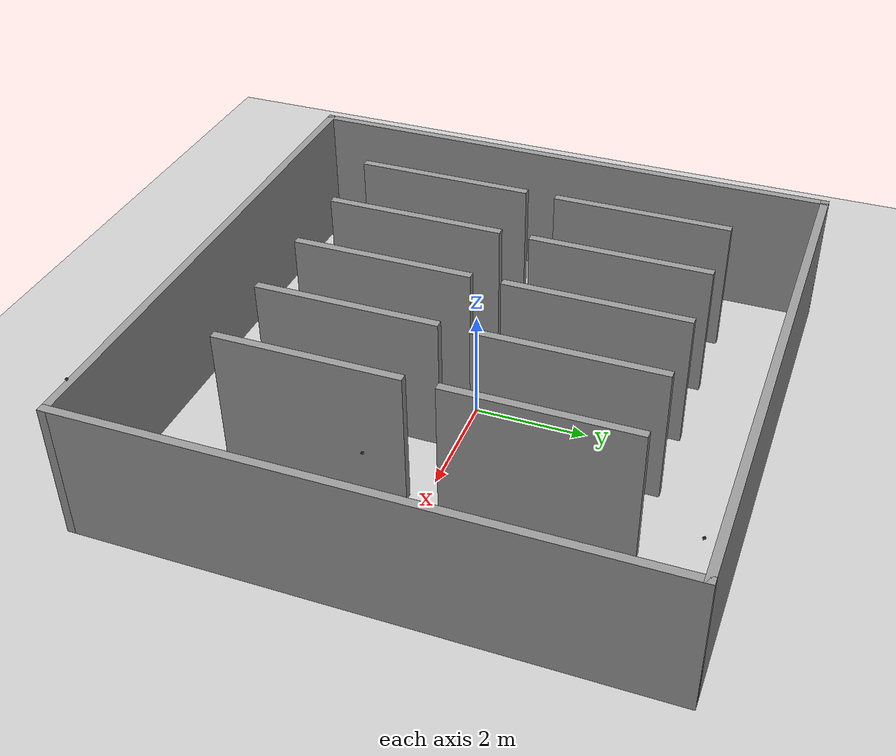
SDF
<sdf version="1.6">
 <world name="default">
  <light name="sun" type="directional">
   <pose>0 0 10 0 -0 0</pose>
   <diffuse>0.8 0.8 0.8 1</diffuse>
   <specular>0.2 0.2 0.2 1</specular>
   <attenuation>
    <range>1000</range>
    <constant>0.9</constant>
    <linear>0.01</linear>
    <quadratic>0.001</quadratic>
   </attenuation>
   <direction>-0.5 0.1 -0.9</direction>
  </light>
  <model name="ground_plane">
   <static>1</static>
   <link name="link">
    <collision name="collision">
     <geometry><plane><normal>0 0 1</normal><size>100 100</size></plane></geometry>
     <surface><friction><ode><mu>100</mu><mu2>50</mu2></ode></friction></surface>
    </collision>
    <visual name="visual">
     <cast_shadows>0</cast_shadows>
     <geometry><plane><normal>0 0 1</normal><size>100 100</size></plane></geometry>
     <material>
      <script><uri>file://media/materials/scripts/gazebo.material</uri><name>Gazebo/Grey</name></script>
     </material>
    </visual>
   </link>
  </model>
  <gravity>0 0 -9.8</gravity>
  <magnetic_field>6e-06 2.3e-05 -4.2e-05</magnetic_field>
  <atmosphere type="adiabatic"/>
  <physics name="default_physics" default="0" type="ode">
   <max_step_size>0.001</max_step_size>
   <real_time_factor>1</real_time_factor>
   <real_time_update_rate>1000</real_time_update_rate>
  </physics>
  <scene><ambient>0.4 0.4 0.4 1</ambient><background>0.7 0.7 0.7 1</background><shadows>1</shadows></scene>
  <spherical_coordinates>
   <surface_model>EARTH_WGS84</surface_model>
   <latitude_deg>0</latitude_deg>
   <longitude_deg>0</longitude_deg>
   <elevation>0</elevation>
   <heading_deg>0</heading_deg>
  </spherical_coordinates>
  <model name="warehouse">
   <link name="Wall_12">
    <pose>-3.5 1.925 0 0 0 -1.5708</pose>
    <visual name="Wall_12_Visual">
     <pose>0 0 1.25 0 -0 0</pose>
     <geometry><box><size>3.3 0.15 2.5</size></box></geometry>
     <material>
      <script><uri>file://media/materials/scripts/gazebo.material</uri><name>Gazebo/Grey</name></script>
      <ambient>1 1 1 1</ambient>
      <shader type="pixel"/>
      <diffuse>0.7 0.7 0.7 1</diffuse>
      <specular>0.01 0.01 0.01 1</specular>
      <emissive>0 0 0 1</emissive>
     </material>
     <meta><layer>0</layer></meta>
    </visual>
    <collision name="Wall_12_Collision">
     <pose>0 0 1.25 0 -0 0</pose>
     <geometry><box><size>3.3 0.15 2.5</size></box></geometry>
     <surface>
      <friction>
       <ode><mu>1</mu><mu2>1</mu2><fdir1>0 0 0</fdir1><slip1>0</slip1><slip2>0</slip2></ode>
       <torsional>
        <coefficient>1</coefficient>
        <patch_radius>0</patch_radius>
        <surface_radius>0</surface_radius>
        <use_patch_radius>1</use_patch_radius>
        <ode><slip>0</slip></ode>
       </torsional>
      </friction>
      <bounce><restitution_coefficient>0</restitution_coefficient><threshold>1e+06</threshold></bounce>
      <contact>
       <collide_without_contact>0</collide_without_contact>
       <collide_without_contact_bitmask>1</collide_without_contact_bitmask>
       <collide_bitmask>1</collide_bitmask>
       <ode>
        <soft_cfm>0</soft_cfm>
        <soft_erp>0.2</soft_erp>
        <kp>1e+13</kp>
        <kd>1</kd>
        <max_vel>0.01</max_vel>
        <min_depth>0</min_depth>
       </ode>
       <bullet>
        <split_impulse>1</split_impulse>
        <split_impulse_penetration_threshold>-0.01</split_impulse_penetration_threshold>
        <soft_cfm>0</soft_cfm>
        <soft_erp>0.2</soft_erp>
        <kp>1e+13</kp>
        <kd>1</kd>
       </bullet>
      </contact>
     </surface>
    </collision>
   </link>
   <link name="Wall_14">
    <pose>-3.5 -1.925 0 0 -0 1.5708</pose>
    <visual name="Wall_14_Visual">
     <pose>0 0 1.25 0 -0 0</pose>
     <geometry><box><size>3.3 0.15 2.5</size></box></geometry>
     <material>
      <script><uri>file://media/materials/scripts/gazebo.material</uri><name>Gazebo/Grey</name></script>
      <ambient>1 1 1 1</ambient>
      <shader type="pixel"/>
      <diffuse>0.7 0.7 0.7 1</diffuse>
      <specular>0.01 0.01 0.01 1</specular>
      <emissive>0 0 0 1</emissive>
     </material>
     <meta><layer>0</layer></meta>
    </visual>
    <collision name="Wall_14_Collision">
     <pose>0 0 1.25 0 -0 0</pose>
     <geometry><box><size>3.3 0.15 2.5</size></box></geometry>
     <surface>
      <friction>
       <ode><mu>1</mu><mu2>1</mu2><fdir1>0 0 0</fdir1><slip1>0</slip1><slip2>0</slip2></ode>
       <torsional>
        <coefficient>1</coefficient>
        <patch_radius>0</patch_radius>
        <surface_radius>0</surface_radius>
        <use_patch_radius>1</use_patch_radius>
        <ode><slip>0</slip></ode>
       </torsional>
      </friction>
      <bounce><restitution_coefficient>0</restitution_coefficient><threshold>1e+06</threshold></bounce>
      <contact>
       <collide_without_contact>0</collide_without_contact>
       <collide_without_contact_bitmask>1</collide_without_contact_bitmask>
       <collide_bitmask>1</collide_bitmask>
       <ode>
        <soft_cfm>0</soft_cfm>
        <soft_erp>0.2</soft_erp>
        <kp>1e+13</kp>
        <kd>1</kd>
        <max_vel>0.01</max_vel>
        <min_depth>0</min_depth>
       </ode>
       <bullet>
        <split_impulse>1</split_impulse>
        <split_impulse_penetration_threshold>-0.01</split_impulse_penetration_threshold>
        <soft_cfm>0</soft_cfm>
        <soft_erp>0.2</soft_erp>
        <kp>1e+13</kp>
        <kd>1</kd>
       </bullet>
      </contact>
     </surface>
    </collision>
   </link>
   <link name="Wall_16">
    <pose>-2 1.925 0 0 0 -1.5708</pose>
    <visual name="Wall_16_Visual">
     <pose>0 0 1.25 0 -0 0</pose>
     <geometry><box><size>3.3 0.15 2.5</size></box></geometry>
     <material>
      <script><uri>file://media/materials/scripts/gazebo.material</uri><name>Gazebo/Grey</name></script>
      <ambient>1 1 1 1</ambient>
      <shader type="pixel"/>
      <diffuse>0.7 0.7 0.7 1</diffuse>
      <specular>0.01 0.01 0.01 1</specular>
      <emissive>0 0 0 1</emissive>
     </material>
     <meta><layer>0</layer></meta>
    </visual>
    <collision name="Wall_16_Collision">
     <pose>0 0 1.25 0 -0 0</pose>
     <geometry><box><size>3.3 0.15 2.5</size></box></geometry>
     <surface>
      <friction>
       <ode><mu>1</mu><mu2>1</mu2><fdir1>0 0 0</fdir1><slip1>0</slip1><slip2>0</slip2></ode>
       <torsional>
        <coefficient>1</coefficient>
        <patch_radius>0</patch_radius>
        <surface_radius>0</surface_radius>
        <use_patch_radius>1</use_patch_radius>
        <ode><slip>0</slip></ode>
       </torsional>
      </friction>
      <bounce><restitution_coefficient>0</restitution_coefficient><threshold>1e+06</threshold></bounce>
      <contact>
       <collide_without_contact>0</collide_without_contact>
       <collide_without_contact_bitmask>1</collide_without_contact_bitmask>
       <collide_bitmask>1</collide_bitmask>
       <ode>
        <soft_cfm>0</soft_cfm>
        <soft_erp>0.2</soft_erp>
        <kp>1e+13</kp>
        <kd>1</kd>
        <max_vel>0.01</max_vel>
        <min_depth>0</min_depth>
       </ode>
       <bullet>
        <split_impulse>1</split_impulse>
        <split_impulse_penetration_threshold>-0.01</split_impulse_penetration_threshold>
        <soft_cfm>0</soft_cfm>
        <soft_erp>0.2</soft_erp>
        <kp>1e+13</kp>
        <kd>1</kd>
       </bullet>
      </contact>
     </surface>
    </collision>
   </link>
   <link name="Wall_18">
    <pose>-2 -1.925 0 0 0 -1.5708</pose>
    <visual name="Wall_18_Visual">
     <pose>0 0 1.25 0 -0 0</pose>
     <geometry><box><size>3.3 0.15 2.5</size></box></geometry>
     <material>
      <script><uri>file://media/materials/scripts/gazebo.material</uri><name>Gazebo/Grey</name></script>
      <ambient>1 1 1 1</ambient>
      <shader type="pixel"/>
      <diffuse>0.7 0.7 0.7 1</diffuse>
      <specular>0.01 0.01 0.01 1</specular>
      <emissive>0 0 0 1</emissive>
     </material>
     <meta><layer>0</layer></meta>
    </visual>
    <collision name="Wall_18_Collision">
     <pose>0 0 1.25 0 -0 0</pose>
     <geometry><box><size>3.3 0.15 2.5</size></box></geometry>
     <surface>
      <friction>
       <ode><mu>1</mu><mu2>1</mu2><fdir1>0 0 0</fdir1><slip1>0</slip1><slip2>0</slip2></ode>
       <torsional>
        <coefficient>1</coefficient>
        <patch_radius>0</patch_radius>
        <surface_radius>0</surface_radius>
        <use_patch_radius>1</use_patch_radius>
        <ode><slip>0</slip></ode>
       </torsional>
      </friction>
      <bounce><restitution_coefficient>0</restitution_coefficient><threshold>1e+06</threshold></bounce>
      <contact>
       <collide_without_contact>0</collide_without_contact>
       <collide_without_contact_bitmask>1</collide_without_contact_bitmask>
       <collide_bitmask>1</collide_bitmask>
       <ode>
        <soft_cfm>0</soft_cfm>
        <soft_erp>0.2</soft_erp>
        <kp>1e+13</kp>
        <kd>1</kd>
        <max_vel>0.01</max_vel>
        <min_depth>0</min_depth>
       </ode>
       <bullet>
        <split_impulse>1</split_impulse>
        <split_impulse_penetration_threshold>-0.01</split_impulse_penetration_threshold>
        <soft_cfm>0</soft_cfm>
        <soft_erp>0.2</soft_erp>
        <kp>1e+13</kp>
        <kd>1</kd>
       </bullet>
      </contact>
     </surface>
    </collision>
   </link>
   <link name="Wall_20">
    <pose>-0.5 1.925 0 0 0 -1.5708</pose>
    <visual name="Wall_20_Visual">
     <pose>0 0 1.25 0 -0 0</pose>
     <geometry><box><size>3.3 0.15 2.5</size></box></geometry>
     <material>
      <script><uri>file://media/materials/scripts/gazebo.material</uri><name>Gazebo/Grey</name></script>
      <ambient>1 1 1 1</ambient>
      <shader type="pixel"/>
      <diffuse>0.7 0.7 0.7 1</diffuse>
      <specular>0.01 0.01 0.01 1</specular>
      <emissive>0 0 0 1</emissive>
     </material>
     <meta><layer>0</layer></meta>
    </visual>
    <collision name="Wall_20_Collision">
     <pose>0 0 1.25 0 -0 0</pose>
     <geometry><box><size>3.3 0.15 2.5</size></box></geometry>
     <surface>
      <friction>
       <ode><mu>1</mu><mu2>1</mu2><fdir1>0 0 0</fdir1><slip1>0</slip1><slip2>0</slip2></ode>
       <torsional>
        <coefficient>1</coefficient>
        <patch_radius>0</patch_radius>
        <surface_radius>0</surface_radius>
        <use_patch_radius>1</use_patch_radius>
        <ode><slip>0</slip></ode>
       </torsional>
      </friction>
      <bounce><restitution_coefficient>0</restitution_coefficient><threshold>1e+06</threshold></bounce>
      <contact>
       <collide_without_contact>0</collide_without_contact>
       <collide_without_contact_bitmask>1</collide_without_contact_bitmask>
       <collide_bitmask>1</collide_bitmask>
       <ode>
        <soft_cfm>0</soft_cfm>
        <soft_erp>0.2</soft_erp>
        <kp>1e+13</kp>
        <kd>1</kd>
        <max_vel>0.01</max_vel>
        <min_depth>0</min_depth>
       </ode>
       <bullet>
        <split_impulse>1</split_impulse>
        <split_impulse_penetration_threshold>-0.01</split_impulse_penetration_threshold>
        <soft_cfm>0</soft_cfm>
        <soft_erp>0.2</soft_erp>
        <kp>1e+13</kp>
        <kd>1</kd>
       </bullet>
      </contact>
     </surface>
    </collision>
   </link>
   <link name="Wall_22">
    <pose>1 1.925 0 0 0 -1.5708</pose>
    <visual name="Wall_22_Visual">
     <pose>0 0 1.25 0 -0 0</pose>
     <geometry><box><size>3.3 0.15 2.5</size></box></geometry>
     <material>
      <script><uri>file://media/materials/scripts/gazebo.material</uri><name>Gazebo/Grey</name></script>
      <ambient>1 1 1 1</ambient>
      <shader type="pixel"/>
      <diffuse>0.7 0.7 0.7 1</diffuse>
      <specular>0.01 0.01 0.01 1</specular>
      <emissive>0 0 0 1</emissive>
     </material>
     <meta><layer>0</layer></meta>
    </visual>
    <collision name="Wall_22_Collision">
     <pose>0 0 1.25 0 -0 0</pose>
     <geometry><box><size>3.3 0.15 2.5</size></box></geometry>
     <surface>
      <friction>
       <ode><mu>1</mu><mu2>1</mu2><fdir1>0 0 0</fdir1><slip1>0</slip1><slip2>0</slip2></ode>
       <torsional>
        <coefficient>1</coefficient>
        <patch_radius>0</patch_radius>
        <surface_radius>0</surface_radius>
        <use_patch_radius>1</use_patch_radius>
        <ode><slip>0</slip></ode>
       </torsional>
      </friction>
      <bounce><restitution_coefficient>0</restitution_coefficient><threshold>1e+06</threshold></bounce>
      <contact>
       <collide_without_contact>0</collide_without_contact>
       <collide_without_contact_bitmask>1</collide_without_contact_bitmask>
       <collide_bitmask>1</collide_bitmask>
       <ode>
        <soft_cfm>0</soft_cfm>
        <soft_erp>0.2</soft_erp>
        <kp>1e+13</kp>
        <kd>1</kd>
        <max_vel>0.01</max_vel>
        <min_depth>0</min_depth>
       </ode>
       <bullet>
        <split_impulse>1</split_impulse>
        <split_impulse_penetration_threshold>-0.01</split_impulse_penetration_threshold>
        <soft_cfm>0</soft_cfm>
        <soft_erp>0.2</soft_erp>
        <kp>1e+13</kp>
        <kd>1</kd>
       </bullet>
      </contact>
     </surface>
    </collision>
   </link>
   <link name="Wall_24">
    <pose>2.5 1.925 0 0 0 -1.5708</pose>
    <visual name="Wall_24_Visual">
     <pose>0 0 1.25 0 -0 0</pose>
     <geometry><box><size>3.3 0.15 2.5</size></box></geometry>
     <material>
      <script><uri>file://media/materials/scripts/gazebo.material</uri><name>Gazebo/Grey</name></script>
      <ambient>1 1 1 1</ambient>
      <shader type="pixel"/>
      <diffuse>0.7 0.7 0.7 1</diffuse>
      <specular>0.01 0.01 0.01 1</specular>
      <emissive>0 0 0 1</emissive>
     </material>
     <meta><layer>0</layer></meta>
    </visual>
    <collision name="Wall_24_Collision">
     <pose>0 0 1.25 0 -0 0</pose>
     <geometry><box><size>3.3 0.15 2.5</size></box></geometry>
     <surface>
      <friction>
       <ode><mu>1</mu><mu2>1</mu2><fdir1>0 0 0</fdir1><slip1>0</slip1><slip2>0</slip2></ode>
       <torsional>
        <coefficient>1</coefficient>
        <patch_radius>0</patch_radius>
        <surface_radius>0</surface_radius>
        <use_patch_radius>1</use_patch_radius>
        <ode><slip>0</slip></ode>
       </torsional>
      </friction>
      <bounce><restitution_coefficient>0</restitution_coefficient><threshold>1e+06</threshold></bounce>
      <contact>
       <collide_without_contact>0</collide_without_contact>
       <collide_without_contact_bitmask>1</collide_without_contact_bitmask>
       <collide_bitmask>1</collide_bitmask>
       <ode>
        <soft_cfm>0</soft_cfm>
        <soft_erp>0.2</soft_erp>
        <kp>1e+13</kp>
        <kd>1</kd>
        <max_vel>0.01</max_vel>
        <min_depth>0</min_depth>
       </ode>
       <bullet>
        <split_impulse>1</split_impulse>
        <split_impulse_penetration_threshold>-0.01</split_impulse_penetration_threshold>
        <soft_cfm>0</soft_cfm>
        <soft_erp>0.2</soft_erp>
        <kp>1e+13</kp>
        <kd>1</kd>
       </bullet>
      </contact>
     </surface>
    </collision>
   </link>
   <link name="Wall_30">
    <pose>-0.5 -1.925 0 0 0 -1.5708</pose>
    <visual name="Wall_30_Visual">
     <pose>0 0 1.25 0 -0 0</pose>
     <geometry><box><size>3.3 0.15 2.5</size></box></geometry>
     <material>
      <script><uri>file://media/materials/scripts/gazebo.material</uri><name>Gazebo/Grey</name></script>
      <ambient>1 1 1 1</ambient>
      <shader type="pixel"/>
      <diffuse>0.7 0.7 0.7 1</diffuse>
      <specular>0.01 0.01 0.01 1</specular>
      <emissive>0 0 0 1</emissive>
     </material>
     <meta><layer>0</layer></meta>
    </visual>
    <collision name="Wall_30_Collision">
     <pose>0 0 1.25 0 -0 0</pose>
     <geometry><box><size>3.3 0.15 2.5</size></box></geometry>
     <surface>
      <friction>
       <ode><mu>1</mu><mu2>1</mu2><fdir1>0 0 0</fdir1><slip1>0</slip1><slip2>0</slip2></ode>
       <torsional>
        <coefficient>1</coefficient>
        <patch_radius>0</patch_radius>
        <surface_radius>0</surface_radius>
        <use_patch_radius>1</use_patch_radius>
        <ode><slip>0</slip></ode>
       </torsional>
      </friction>
      <bounce><restitution_coefficient>0</restitution_coefficient><threshold>1e+06</threshold></bounce>
      <contact>
       <collide_without_contact>0</collide_without_contact>
       <collide_without_contact_bitmask>1</collide_without_contact_bitmask>
       <collide_bitmask>1</collide_bitmask>
       <ode>
        <soft_cfm>0</soft_cfm>
        <soft_erp>0.2</soft_erp>
        <kp>1e+13</kp>
        <kd>1</kd>
        <max_vel>0.01</max_vel>
        <min_depth>0</min_depth>
       </ode>
       <bullet>
        <split_impulse>1</split_impulse>
        <split_impulse_penetration_threshold>-0.01</split_impulse_penetration_threshold>
        <soft_cfm>0</soft_cfm>
        <soft_erp>0.2</soft_erp>
        <kp>1e+13</kp>
        <kd>1</kd>
       </bullet>
      </contact>
     </surface>
    </collision>
   </link>
   <link name="Wall_32">
    <pose>1 -1.925 0 0 0 -1.5708</pose>
    <visual name="Wall_32_Visual">
     <pose>0 0 1.25 0 -0 0</pose>
     <geometry><box><size>3.3 0.15 2.5</size></box></geometry>
     <material>
      <script><uri>file://media/materials/scripts/gazebo.material</uri><name>Gazebo/Grey</name></script>
      <ambient>1 1 1 1</ambient>
      <shader type="pixel"/>
      <diffuse>0.7 0.7 0.7 1</diffuse>
      <specular>0.01 0.01 0.01 1</specular>
      <emissive>0 0 0 1</emissive>
     </material>
     <meta><layer>0</layer></meta>
    </visual>
    <collision name="Wall_32_Collision">
     <pose>0 0 1.25 0 -0 0</pose>
     <geometry><box><size>3.3 0.15 2.5</size></box></geometry>
     <surface>
      <friction>
       <ode><mu>1</mu><mu2>1</mu2><fdir1>0 0 0</fdir1><slip1>0</slip1><slip2>0</slip2></ode>
       <torsional>
        <coefficient>1</coefficient>
        <patch_radius>0</patch_radius>
        <surface_radius>0</surface_radius>
        <use_patch_radius>1</use_patch_radius>
        <ode><slip>0</slip></ode>
       </torsional>
      </friction>
      <bounce><restitution_coefficient>0</restitution_coefficient><threshold>1e+06</threshold></bounce>
      <contact>
       <collide_without_contact>0</collide_without_contact>
       <collide_without_contact_bitmask>1</collide_without_contact_bitmask>
       <collide_bitmask>1</collide_bitmask>
       <ode>
        <soft_cfm>0</soft_cfm>
        <soft_erp>0.2</soft_erp>
        <kp>1e+13</kp>
        <kd>1</kd>
        <max_vel>0.01</max_vel>
        <min_depth>0</min_depth>
       </ode>
       <bullet>
        <split_impulse>1</split_impulse>
        <split_impulse_penetration_threshold>-0.01</split_impulse_penetration_threshold>
        <soft_cfm>0</soft_cfm>
        <soft_erp>0.2</soft_erp>
        <kp>1e+13</kp>
        <kd>1</kd>
       </bullet>
      </contact>
     </surface>
    </collision>
   </link>
   <link name="Wall_34">
    <pose>2.5 -1.925 0 0 0 -1.5708</pose>
    <visual name="Wall_34_Visual">
     <pose>0 0 1.25 0 -0 0</pose>
     <geometry><box><size>3.3 0.15 2.5</size></box></geometry>
     <material>
      <script><uri>file://media/materials/scripts/gazebo.material</uri><name>Gazebo/Grey</name></script>
      <ambient>1 1 1 1</ambient>
      <shader type="pixel"/>
      <diffuse>0.7 0.7 0.7 1</diffuse>
      <specular>0.01 0.01 0.01 1</specular>
      <emissive>0 0 0 1</emissive>
     </material>
     <meta><layer>0</layer></meta>
    </visual>
    <collision name="Wall_34_Collision">
     <pose>0 0 1.25 0 -0 0</pose>
     <geometry><box><size>3.3 0.15 2.5</size></box></geometry>
     <surface>
      <friction>
       <ode><mu>1</mu><mu2>1</mu2><fdir1>0 0 0</fdir1><slip1>0</slip1><slip2>0</slip2></ode>
       <torsional>
        <coefficient>1</coefficient>
        <patch_radius>0</patch_radius>
        <surface_radius>0</surface_radius>
        <use_patch_radius>1</use_patch_radius>
        <ode><slip>0</slip></ode>
       </torsional>
      </friction>
      <bounce><restitution_coefficient>0</restitution_coefficient><threshold>1e+06</threshold></bounce>
      <contact>
       <collide_without_contact>0</collide_without_contact>
       <collide_without_contact_bitmask>1</collide_without_contact_bitmask>
       <collide_bitmask>1</collide_bitmask>
       <ode>
        <soft_cfm>0</soft_cfm>
        <soft_erp>0.2</soft_erp>
        <kp>1e+13</kp>
        <kd>1</kd>
        <max_vel>0.01</max_vel>
        <min_depth>0</min_depth>
       </ode>
       <bullet>
        <split_impulse>1</split_impulse>
        <split_impulse_penetration_threshold>-0.01</split_impulse_penetration_threshold>
        <soft_cfm>0</soft_cfm>
        <soft_erp>0.2</soft_erp>
        <kp>1e+13</kp>
        <kd>1</kd>
       </bullet>
      </contact>
     </surface>
    </collision>
   </link>
   <link name="Wall_6">
    <pose>-5 0 0 0 -0 1.5708</pose>
    <visual name="Wall_6_Visual">
     <pose>0 0 1.25 0 -0 0</pose>
     <geometry><box><size>10.15 0.15 2.5</size></box></geometry>
     <material>
      <script><uri>file://media/materials/scripts/gazebo.material</uri><name>Gazebo/Grey</name></script>
      <ambient>1 1 1 1</ambient>
      <shader type="pixel"/>
      <diffuse>0.7 0.7 0.7 1</diffuse>
      <specular>0.01 0.01 0.01 1</specular>
      <emissive>0 0 0 1</emissive>
     </material>
     <meta><layer>0</layer></meta>
    </visual>
    <collision name="Wall_6_Collision">
     <pose>0 0 1.25 0 -0 0</pose>
     <geometry><box><size>10.15 0.15 2.5</size></box></geometry>
     <surface>
      <friction>
       <ode><mu>1</mu><mu2>1</mu2><fdir1>0 0 0</fdir1><slip1>0</slip1><slip2>0</slip2></ode>
       <torsional>
        <coefficient>1</coefficient>
        <patch_radius>0</patch_radius>
        <surface_radius>0</surface_radius>
        <use_patch_radius>1</use_patch_radius>
        <ode><slip>0</slip></ode>
       </torsional>
      </friction>
      <bounce><restitution_coefficient>0</restitution_coefficient><threshold>1e+06</threshold></bounce>
      <contact>
       <collide_without_contact>0</collide_without_contact>
       <collide_without_contact_bitmask>1</collide_without_contact_bitmask>
       <collide_bitmask>1</collide_bitmask>
       <ode>
        <soft_cfm>0</soft_cfm>
        <soft_erp>0.2</soft_erp>
        <kp>1e+13</kp>
        <kd>1</kd>
        <max_vel>0.01</max_vel>
        <min_depth>0</min_depth>
       </ode>
       <bullet>
        <split_impulse>1</split_impulse>
        <split_impulse_penetration_threshold>-0.01</split_impulse_penetration_threshold>
        <soft_cfm>0</soft_cfm>
        <soft_erp>0.2</soft_erp>
        <kp>1e+13</kp>
        <kd>1</kd>
       </bullet>
      </contact>
     </surface>
    </collision>
   </link>
   <link name="Wall_7">
    <pose>0 5 0 0 -0 0</pose>
    <visual name="Wall_7_Visual">
     <pose>0 0 1.25 0 -0 0</pose>
     <geometry><box><size>10.15 0.15 2.5</size></box></geometry>
     <material>
      <script><uri>file://media/materials/scripts/gazebo.material</uri><name>Gazebo/Grey</name></script>
      <ambient>1 1 1 1</ambient>
      <shader type="pixel"/>
      <diffuse>0.7 0.7 0.7 1</diffuse>
      <specular>0.01 0.01 0.01 1</specular>
      <emissive>0 0 0 1</emissive>
     </material>
     <meta><layer>0</layer></meta>
    </visual>
    <collision name="Wall_7_Collision">
     <pose>0 0 1.25 0 -0 0</pose>
     <geometry><box><size>10.15 0.15 2.5</size></box></geometry>
     <surface>
      <friction>
       <ode><mu>1</mu><mu2>1</mu2><fdir1>0 0 0</fdir1><slip1>0</slip1><slip2>0</slip2></ode>
       <torsional>
        <coefficient>1</coefficient>
        <patch_radius>0</patch_radius>
        <surface_radius>0</surface_radius>
        <use_patch_radius>1</use_patch_radius>
        <ode><slip>0</slip></ode>
       </torsional>
      </friction>
      <bounce><restitution_coefficient>0</restitution_coefficient><threshold>1e+06</threshold></bounce>
      <contact>
       <collide_without_contact>0</collide_without_contact>
       <collide_without_contact_bitmask>1</collide_without_contact_bitmask>
       <collide_bitmask>1</collide_bitmask>
       <ode>
        <soft_cfm>0</soft_cfm>
        <soft_erp>0.2</soft_erp>
        <kp>1e+13</kp>
        <kd>1</kd>
        <max_vel>0.01</max_vel>
        <min_depth>0</min_depth>
       </ode>
       <bullet>
        <split_impulse>1</split_impulse>
        <split_impulse_penetration_threshold>-0.01</split_impulse_penetration_threshold>
        <soft_cfm>0</soft_cfm>
        <soft_erp>0.2</soft_erp>
        <kp>1e+13</kp>
        <kd>1</kd>
       </bullet>
      </contact>
     </surface>
    </collision>
   </link>
   <link name="Wall_8">
    <pose>5 0 0 0 0 -1.5708</pose>
    <visual name="Wall_8_Visual">
     <pose>0 0 1.25 0 -0 0</pose>
     <geometry><box><size>10.15 0.15 2.5</size></box></geometry>
     <material>
      <script><uri>file://media/materials/scripts/gazebo.material</uri><name>Gazebo/Grey</name></script>
      <ambient>1 1 1 1</ambient>
      <shader type="pixel"/>
      <diffuse>0.7 0.7 0.7 1</diffuse>
      <specular>0.01 0.01 0.01 1</specular>
      <emissive>0 0 0 1</emissive>
     </material>
     <meta><layer>0</layer></meta>
    </visual>
    <collision name="Wall_8_Collision">
     <pose>0 0 1.25 0 -0 0</pose>
     <geometry><box><size>10.15 0.15 2.5</size></box></geometry>
     <surface>
      <friction>
       <ode><mu>1</mu><mu2>1</mu2><fdir1>0 0 0</fdir1><slip1>0</slip1><slip2>0</slip2></ode>
       <torsional>
        <coefficient>1</coefficient>
        <patch_radius>0</patch_radius>
        <surface_radius>0</surface_radius>
        <use_patch_radius>1</use_patch_radius>
        <ode><slip>0</slip></ode>
       </torsional>
      </friction>
      <bounce><restitution_coefficient>0</restitution_coefficient><threshold>1e+06</threshold></bounce>
      <contact>
       <collide_without_contact>0</collide_without_contact>
       <collide_without_contact_bitmask>1</collide_without_contact_bitmask>
       <collide_bitmask>1</collide_bitmask>
       <ode>
        <soft_cfm>0</soft_cfm>
        <soft_erp>0.2</soft_erp>
        <kp>1e+13</kp>
        <kd>1</kd>
        <max_vel>0.01</max_vel>
        <min_depth>0</min_depth>
       </ode>
       <bullet>
        <split_impulse>1</split_impulse>
        <split_impulse_penetration_threshold>-0.01</split_impulse_penetration_threshold>
        <soft_cfm>0</soft_cfm>
        <soft_erp>0.2</soft_erp>
        <kp>1e+13</kp>
        <kd>1</kd>
       </bullet>
      </contact>
     </surface>
    </collision>
   </link>
   <link name="Wall_9">
    <pose>0 -5 0 0 -0 3.14159</pose>
    <visual name="Wall_9_Visual">
     <pose>0 0 1.25 0 -0 0</pose>
     <geometry><box><size>10.15 0.15 2.5</size></box></geometry>
     <material>
      <script><uri>file://media/materials/scripts/gazebo.material</uri><name>Gazebo/Grey</name></script>
      <ambient>1 1 1 1</ambient>
      <shader type="pixel"/>
      <diffuse>0.7 0.7 0.7 1</diffuse>
      <specular>0.01 0.01 0.01 1</specular>
      <emissive>0 0 0 1</emissive>
     </material>
     <meta><layer>0</layer></meta>
    </visual>
    <collision name="Wall_9_Collision">
     <pose>0 0 1.25 0 -0 0</pose>
     <geometry><box><size>10.15 0.15 2.5</size></box></geometry>
     <surface>
      <friction>
       <ode><mu>1</mu><mu2>1</mu2><fdir1>0 0 0</fdir1><slip1>0</slip1><slip2>0</slip2></ode>
       <torsional>
        <coefficient>1</coefficient>
        <patch_radius>0</patch_radius>
        <surface_radius>0</surface_radius>
        <use_patch_radius>1</use_patch_radius>
        <ode><slip>0</slip></ode>
       </torsional>
      </friction>
      <bounce><restitution_coefficient>0</restitution_coefficient><threshold>1e+06</threshold></bounce>
      <contact>
       <collide_without_contact>0</collide_without_contact>
       <collide_without_contact_bitmask>1</collide_without_contact_bitmask>
       <collide_bitmask>1</collide_bitmask>
       <ode>
        <soft_cfm>0</soft_cfm>
        <soft_erp>0.2</soft_erp>
        <kp>1e+13</kp>
        <kd>1</kd>
        <max_vel>0.01</max_vel>
        <min_depth>0</min_depth>
       </ode>
       <bullet>
        <split_impulse>1</split_impulse>
        <split_impulse_penetration_threshold>-0.01</split_impulse_penetration_threshold>
        <soft_cfm>0</soft_cfm>
        <soft_erp>0.2</soft_erp>
        <kp>1e+13</kp>
        <kd>1</kd>
       </bullet>
      </contact>
     </surface>
    </collision>
   </link>
   <static>1</static>
  </model>
  <model name="cam1">
   <link name="cam1/base_link">
    <inertial>
     <mass>0.15</mass>
     <inertia><ixx>0.01</ixx><ixy>0</ixy><ixz>0</ixz><iyy>0.01</iyy><iyz>0</iyz><izz>0.01</izz></inertia>
    </inertial>
    <collision name="cam1/base_link_collision">
     <geometry><box><size>0.03 0.035 0.035</size></box></geometry>
    </collision>
    <visual name="cam1/base_link_visual">
     <geometry><box><size>0.03 0.035 0.035</size></box></geometry>
     <material>
      <script><name>Gazebo/black</name><uri>file://media/materials/scripts/gazebo.material</uri></script>
     </material>
    </visual>
    <gravity>0</gravity>
    <sensor name="camera1" type="camera">
     <update_rate>30</update_rate>
     <camera name="head">
      <horizontal_fov>1.39626</horizontal_fov>
      <image><width>640</width><height>480</height><format>R8G8B8</format></image>
      <clip><near>0.02</near><far>300</far></clip>
      <noise><type>gaussian</type><mean>0</mean><stddev>0</stddev></noise>
     </camera>
     <plugin name="camera_controller" filename="libgazebo_ros_camera.so">
      <alwaysOn>true</alwaysOn>
      <updateRate>0.0</updateRate>
      <cameraName>camera</cameraName>
      <imageTopicName>image_raw</imageTopicName>
      <cameraInfoTopicName>camera_info</cameraInfoTopicName>
      <frameName>camera_link</frameName>
      <hackBaseline>0.07</hackBaseline>
      <distortionK1>0.0</distortionK1>
      <distortionK2>0.0</distortionK2>
      <distortionK3>0.0</distortionK3>
      <distortionT1>0.0</distortionT1>
      <distortionT2>0.0</distortionT2>
      <robotNamespace>/cam1/</robotNamespace>
     </plugin>
    </sensor>
   </link>
   <pose>4.6 4.8 2.8 0 0.785 -2.355</pose>
  </model>
  <model name="cam_middle">
   <link name="cam2/base_link">
    <inertial>
     <mass>0.15</mass>
     <inertia><ixx>0.01</ixx><ixy>0</ixy><ixz>0</ixz><iyy>0.01</iyy><iyz>0</iyz><izz>0.01</izz></inertia>
    </inertial>
    <collision name="cam2/base_link_collision">
     <geometry><box><size>0.03 0.035 0.035</size></box></geometry>
    </collision>
    <visual name="cam2/base_link_visual">
     <geometry><box><size>0.03 0.035 0.035</size></box></geometry>
     <material>
      <script><name>Gazebo/black</name><uri>file://media/materials/scripts/gazebo.material</uri></script>
     </material>
    </visual>
    <gravity>0</gravity>
    <sensor name="camera1" type="camera">
     <update_rate>30</update_rate>
     <camera name="head">
      <horizontal_fov>1.39626</horizontal_fov>
      <image><width>640</width><height>480</height><format>R8G8B8</format></image>
      <clip><near>0.02</near><far>300</far></clip>
      <noise><type>gaussian</type><mean>0</mean><stddev>0</stddev></noise>
     </camera>
     <plugin name="camera_controller" filename="libgazebo_ros_camera.so">
      <alwaysOn>true</alwaysOn>
      <updateRate>0.0</updateRate>
      <cameraName>camera</cameraName>
      <imageTopicName>image_raw</imageTopicName>
      <cameraInfoTopicName>camera_info</cameraInfoTopicName>
      <frameName>camera_link</frameName>
      <hackBaseline>0.07</hackBaseline>
      <distortionK1>0.0</distortionK1>
      <distortionK2>0.0</distortionK2>
      <distortionK3>0.0</distortionK3>
      <distortionT1>0.0</distortionT1>
      <distortionT2>0.0</distortionT2>
      <robotNamespace>/cam_middle/</robotNamespace>
     </plugin>
    </sensor>
   </link>
   <pose>4.6 0 2.8 0 0.785 3.14</pose>
  </model>
  <model name="cam2">
   <link name="cam2/base_link">
    <inertial>
     <mass>0.15</mass>
     <inertia><ixx>0.01</ixx><ixy>0</ixy><ixz>0</ixz><iyy>0.01</iyy><iyz>0</iyz><izz>0.01</izz></inertia>
    </inertial>
    <collision name="cam2/base_link_collision">
     <geometry><box><size>0.03 0.035 0.035</size></box></geometry>
    </collision>
    <visual name="cam2/base_link_visual">
     <geometry><box><size>0.03 0.035 0.035</size></box></geometry>
     <material>
      <script><name>Gazebo/black</name><uri>file://media/materials/scripts/gazebo.material</uri></script>
     </material>
    </visual>
    <gravity>0</gravity>
    <sensor name="camera1" type="camera">
     <update_rate>30</update_rate>
     <camera name="head">
      <horizontal_fov>1.39626</horizontal_fov>
      <image><width>640</width><height>480</height><format>R8G8B8</format></image>
      <clip><near>0.02</near><far>300</far></clip>
      <noise><type>gaussian</type><mean>0</mean><stddev>0</stddev></noise>
     </camera>
     <plugin name="camera_controller" filename="libgazebo_ros_camera.so">
      <alwaysOn>true</alwaysOn>
      <updateRate>0.0</updateRate>
      <cameraName>camera</cameraName>
      <imageTopicName>image_raw</imageTopicName>
      <cameraInfoTopicName>camera_info</cameraInfoTopicName>
      <frameName>camera_link</frameName>
      <hackBaseline>0.07</hackBaseline>
      <distortionK1>0.0</distortionK1>
      <distortionK2>0.0</distortionK2>
      <distortionK3>0.0</distortionK3>
      <distortionT1>0.0</distortionT1>
      <distortionT2>0.0</distortionT2>
      <robotNamespace>/cam2/</robotNamespace>
     </plugin>
    </sensor>
   </link>
   <pose>4.6 -4.8 2.8 0 0.785 2.355</pose>
  </model>
 </world>
</sdf>
